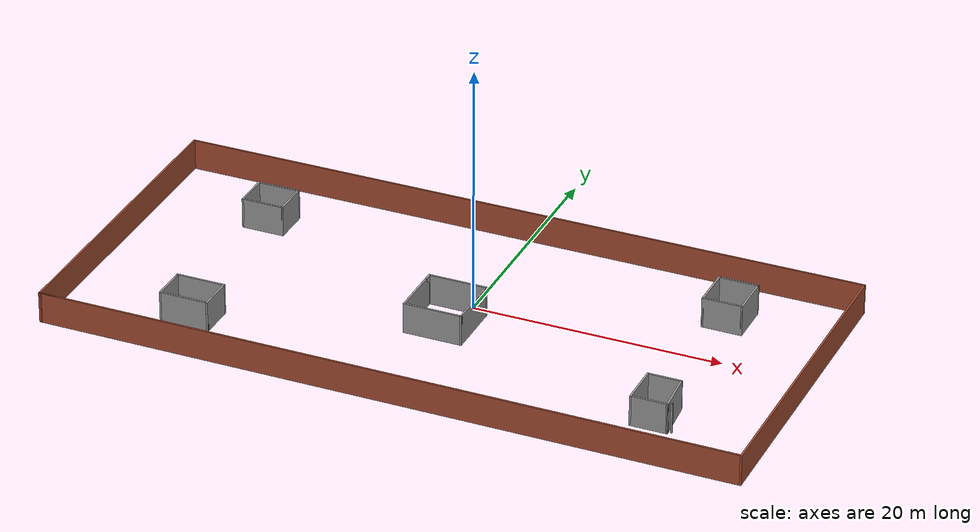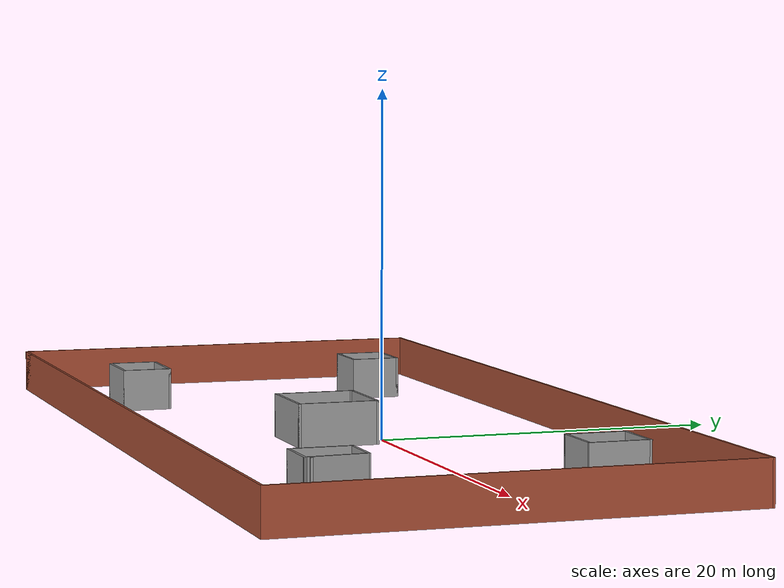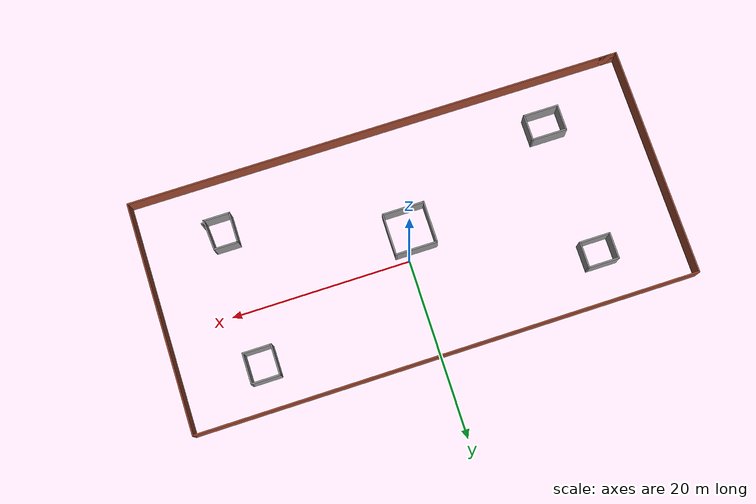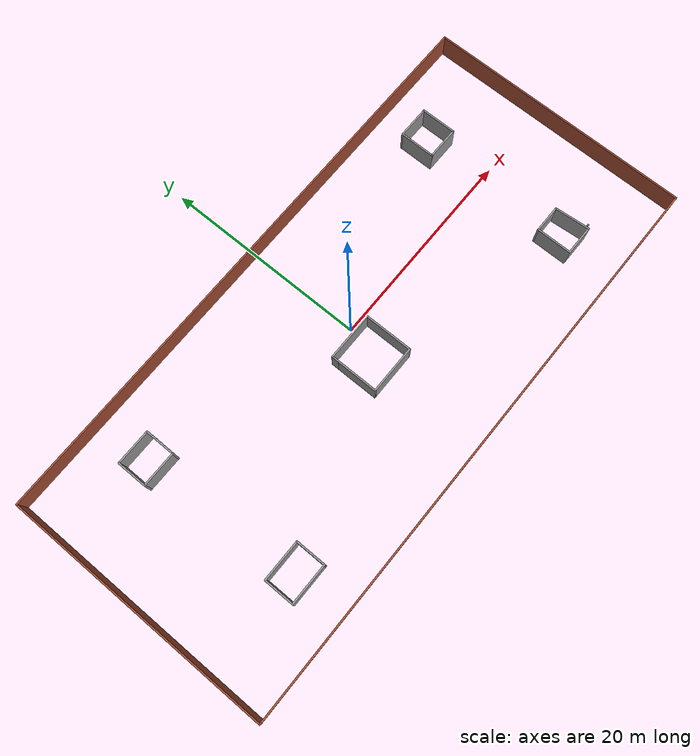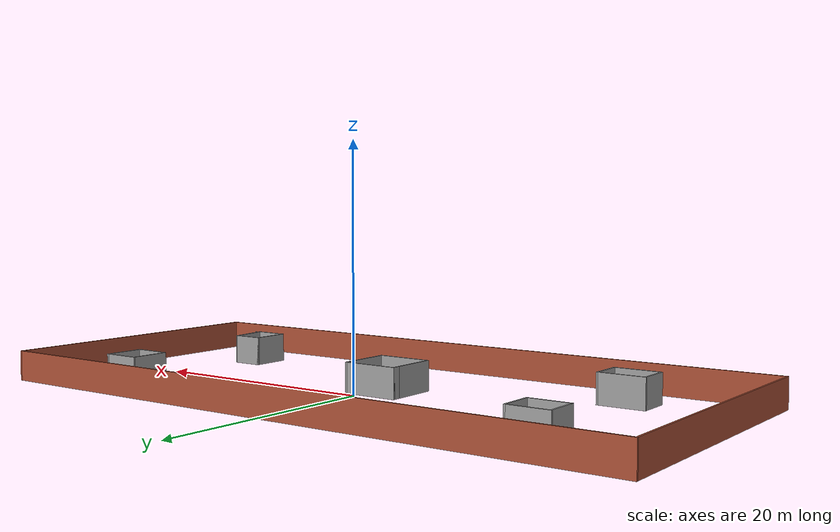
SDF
<?xml version='1.0'?>
<sdf version='1.6'>
  <model name='world'>
    <pose frame=''>-0.851102 -1.94617 0 0 -0 0</pose>
    <link name='Wall_1'>
      <collision name='Wall_1_Collision'>
        <geometry>
          <box>
            <size>55.75 0.15 2.5</size>
          </box>
        </geometry>
        <pose frame=''>0 0 1.25 0 -0 0</pose>
      </collision>
      <visual name='Wall_1_Visual'>
        <pose frame=''>0 0 1.25 0 -0 0</pose>
        <geometry>
          <box>
            <size>55.75 0.15 2.5</size>
          </box>
        </geometry>
        <material>
          <script>
            <uri>file://media/materials/scripts/gazebo.material</uri>
            <name>Gazebo/Bricks</name>
          </script>
          <ambient>1 1 1 1</ambient>
        </material>
        <meta>
          <layer>0</layer>
        </meta>
      </visual>
      <pose frame=''>0.125001 -12.925 0 0 -0 0</pose>
    </link>
    <link name='Wall_2'>
      <collision name='Wall_2_Collision'>
        <geometry>
          <box>
            <size>26 0.15 2.5</size>
          </box>
        </geometry>
        <pose frame=''>0 0 1.25 0 -0 0</pose>
      </collision>
      <visual name='Wall_2_Visual'>
        <pose frame=''>0 0 1.25 0 -0 0</pose>
        <geometry>
          <box>
            <size>26 0.15 2.5</size>
          </box>
        </geometry>
        <material>
          <script>
            <uri>file://media/materials/scripts/gazebo.material</uri>
            <name>Gazebo/Bricks</name>
          </script>
          <ambient>1 1 1 1</ambient>
        </material>
        <meta>
          <layer>0</layer>
        </meta>
      </visual>
      <pose frame=''>27.925 -0 0 0 -0 1.5708</pose>
    </link>
    <link name='Wall_3'>
      <collision name='Wall_3_Collision'>
        <geometry>
          <box>
            <size>56 0.15 2.5</size>
          </box>
        </geometry>
        <pose frame=''>0 0 1.25 0 -0 0</pose>
      </collision>
      <visual name='Wall_3_Visual'>
        <pose frame=''>0 0 1.25 0 -0 0</pose>
        <geometry>
          <box>
            <size>56 0.15 2.5</size>
          </box>
        </geometry>
        <material>
          <script>
            <uri>file://media/materials/scripts/gazebo.material</uri>
            <name>Gazebo/Bricks</name>
          </script>
          <ambient>1 1 1 1</ambient>
        </material>
        <meta>
          <layer>0</layer>
        </meta>
      </visual>
      <pose frame=''>1e-06 12.925 0 0 -0 3.14159</pose>
    </link>
    <link name='Wall_34'>
      <collision name='Wall_34_Collision'>
        <geometry>
          <box>
            <size>4.5 0.15 2.5</size>
          </box>
        </geometry>
        <pose frame=''>0 0 1.25 0 -0 0</pose>
      </collision>
      <visual name='Wall_34_Visual'>
        <pose frame=''>0 0 1.25 0 -0 0</pose>
        <geometry>
          <box>
            <size>4.5 0.15 2.5</size>
          </box>
        </geometry>
        <material>
          <script>
            <uri>file://media/materials/scripts/gazebo.material</uri>
            <name>Gazebo/Grey</name>
          </script>
          <ambient>1 1 1 1</ambient>
        </material>
        <meta>
          <layer>0</layer>
        </meta>
      </visual>
      <pose frame=''>-2.44147 -1.20102 0 0 -0 -1.5708</pose>
    </link>
    <link name='Wall_35'>
      <collision name='Wall_35_Collision'>
        <geometry>
          <box>
            <size>4.75 0.15 2.5</size>
          </box>
        </geometry>
        <pose frame=''>0 0 1.25 0 -0 0</pose>
      </collision>
      <visual name='Wall_35_Visual'>
        <pose frame=''>0 0 1.25 0 -0 0</pose>
        <geometry>
          <box>
            <size>4.75 0.15 2.5</size>
          </box>
        </geometry>
        <material>
          <script>
            <uri>file://media/materials/scripts/gazebo.material</uri>
            <name>Gazebo/Grey</name>
          </script>
          <ambient>1 1 1 1</ambient>
        </material>
        <meta>
          <layer>0</layer>
        </meta>
      </visual>
      <pose frame=''>-0.141466 -3.37602 0 0 -0 0</pose>
    </link>
    <link name='Wall_36'>
      <collision name='Wall_36_Collision'>
        <geometry>
          <box>
            <size>4.75 0.15 2.5</size>
          </box>
        </geometry>
        <pose frame=''>0 0 1.25 0 -0 0</pose>
      </collision>
      <visual name='Wall_36_Visual'>
        <pose frame=''>0 0 1.25 0 -0 0</pose>
        <geometry>
          <box>
            <size>4.75 0.15 2.5</size>
          </box>
        </geometry>
        <material>
          <script>
            <uri>file://media/materials/scripts/gazebo.material</uri>
            <name>Gazebo/Grey</name>
          </script>
          <ambient>1 1 1 1</ambient>
        </material>
        <meta>
          <layer>0</layer>
        </meta>
      </visual>
      <pose frame=''>2.15853 -1.07602 0 0 -0 1.5708</pose>
    </link>
    <link name='Wall_37'>
      <collision name='Wall_37_Collision'>
        <geometry>
          <box>
            <size>4.75 0.15 2.5</size>
          </box>
        </geometry>
        <pose frame=''>0 0 1.25 0 -0 0</pose>
      </collision>
      <visual name='Wall_37_Visual'>
        <pose frame=''>0 0 1.25 0 -0 0</pose>
        <geometry>
          <box>
            <size>4.75 0.15 2.5</size>
          </box>
        </geometry>
        <material>
          <script>
            <uri>file://media/materials/scripts/gazebo.material</uri>
            <name>Gazebo/Grey</name>
          </script>
          <ambient>1 1 1 1</ambient>
        </material>
        <meta>
          <layer>0</layer>
        </meta>
      </visual>
      <pose frame=''>-0.141466 1.22398 0 0 -0 3.14159</pose>
    </link>
    <link name='Wall_38'>
      <collision name='Wall_38_Collision'>
        <geometry>
          <box>
            <size>0.75 0.15 2.5</size>
          </box>
        </geometry>
        <pose frame=''>0 0 1.25 0 -0 0</pose>
      </collision>
      <visual name='Wall_38_Visual'>
        <pose frame=''>0 0 1.25 0 -0 0</pose>
        <geometry>
          <box>
            <size>0.75 0.15 2.5</size>
          </box>
        </geometry>
        <material>
          <script>
            <uri>file://media/materials/scripts/gazebo.material</uri>
            <name>Gazebo/Grey</name>
          </script>
          <ambient>1 1 1 1</ambient>
        </material>
        <meta>
          <layer>0</layer>
        </meta>
      </visual>
      <pose frame=''>-2.44147 0.923978 0 0 -0 -1.5708</pose>
    </link>
    <link name='Wall_4'>
      <collision name='Wall_4_Collision'>
        <geometry>
          <box>
            <size>26 0.15 2.5</size>
          </box>
        </geometry>
        <pose frame=''>0 0 1.25 0 -0 0</pose>
      </collision>
      <visual name='Wall_4_Visual'>
        <pose frame=''>0 0 1.25 0 -0 0</pose>
        <geometry>
          <box>
            <size>26 0.15 2.5</size>
          </box>
        </geometry>
        <material>
          <script>
            <uri>file://media/materials/scripts/gazebo.material</uri>
            <name>Gazebo/Bricks</name>
          </script>
          <ambient>1 1 1 1</ambient>
        </material>
        <meta>
          <layer>0</layer>
        </meta>
      </visual>
      <pose frame=''>-27.925 -0 0 0 -0 -1.5708</pose>
    </link>
    <link name='Wall_40'>
      <collision name='Wall_40_Collision'>
        <geometry>
          <box>
            <size>3 0.15 2.5</size>
          </box>
        </geometry>
        <pose frame=''>0 0 1.25 0 -0 0</pose>
      </collision>
      <visual name='Wall_40_Visual'>
        <pose frame=''>0 0 1.25 0 -0 0</pose>
        <geometry>
          <box>
            <size>3 0.15 2.5</size>
          </box>
        </geometry>
        <material>
          <script>
            <uri>file://media/materials/scripts/gazebo.material</uri>
            <name>Gazebo/Grey</name>
          </script>
          <ambient>1 1 1 1</ambient>
        </material>
        <meta>
          <layer>0</layer>
        </meta>
      </visual>
      <pose frame=''>-20.3066 7.45804 0 0 -0 -1.5708</pose>
    </link>
    <link name='Wall_41'>
      <collision name='Wall_41_Collision'>
        <geometry>
          <box>
            <size>3.5 0.15 2.5</size>
          </box>
        </geometry>
        <pose frame=''>0 0 1.25 0 -0 0</pose>
      </collision>
      <visual name='Wall_41_Visual'>
        <pose frame=''>0 0 1.25 0 -0 0</pose>
        <geometry>
          <box>
            <size>3.5 0.15 2.5</size>
          </box>
        </geometry>
        <material>
          <script>
            <uri>file://media/materials/scripts/gazebo.material</uri>
            <name>Gazebo/Grey</name>
          </script>
          <ambient>1 1 1 1</ambient>
        </material>
        <meta>
          <layer>0</layer>
        </meta>
      </visual>
      <pose frame=''>-18.6316 6.03304 0 0 -0 0</pose>
    </link>
    <link name='Wall_45'>
      <collision name='Wall_45_Collision'>
        <geometry>
          <box>
            <size>3 0.15 2.5</size>
          </box>
        </geometry>
        <pose frame=''>0 0 1.25 0 -0 0</pose>
      </collision>
      <visual name='Wall_45_Visual'>
        <pose frame=''>0 0 1.25 0 -0 0</pose>
        <geometry>
          <box>
            <size>3 0.15 2.5</size>
          </box>
        </geometry>
        <material>
          <script>
            <uri>file://media/materials/scripts/gazebo.material</uri>
            <name>Gazebo/Grey</name>
          </script>
          <ambient>1 1 1 1</ambient>
        </material>
        <meta>
          <layer>0</layer>
        </meta>
      </visual>
      <pose frame=''>-16.9566 7.45804 0 0 -0 1.5708</pose>
    </link>
    <link name='Wall_46'>
      <collision name='Wall_46_Collision'>
        <geometry>
          <box>
            <size>3.5 0.15 2.5</size>
          </box>
        </geometry>
        <pose frame=''>0 0 1.25 0 -0 0</pose>
      </collision>
      <visual name='Wall_46_Visual'>
        <pose frame=''>0 0 1.25 0 -0 0</pose>
        <geometry>
          <box>
            <size>3.5 0.15 2.5</size>
          </box>
        </geometry>
        <material>
          <script>
            <uri>file://media/materials/scripts/gazebo.material</uri>
            <name>Gazebo/Grey</name>
          </script>
          <ambient>1 1 1 1</ambient>
        </material>
        <meta>
          <layer>0</layer>
        </meta>
      </visual>
      <pose frame=''>-18.6316 8.88304 0 0 -0 3.14159</pose>
    </link>
    <link name='Wall_48'>
      <collision name='Wall_48_Collision'>
        <geometry>
          <box>
            <size>3 0.15 2.5</size>
          </box>
        </geometry>
        <pose frame=''>0 0 1.25 0 -0 0</pose>
      </collision>
      <visual name='Wall_48_Visual'>
        <pose frame=''>0 0 1.25 0 -0 0</pose>
        <geometry>
          <box>
            <size>3 0.15 2.5</size>
          </box>
        </geometry>
        <material>
          <script>
            <uri>file://media/materials/scripts/gazebo.material</uri>
            <name>Gazebo/Grey</name>
          </script>
          <ambient>1 1 1 1</ambient>
        </material>
        <meta>
          <layer>0</layer>
        </meta>
      </visual>
      <pose frame=''>-19.7484 -7.75528 0 0 -0 -1.5708</pose>
    </link>
    <link name='Wall_49'>
      <collision name='Wall_49_Collision'>
        <geometry>
          <box>
            <size>4 0.15 2.5</size>
          </box>
        </geometry>
        <pose frame=''>0 0 1.25 0 -0 0</pose>
      </collision>
      <visual name='Wall_49_Visual'>
        <pose frame=''>0 0 1.25 0 -0 0</pose>
        <geometry>
          <box>
            <size>4 0.15 2.5</size>
          </box>
        </geometry>
        <material>
          <script>
            <uri>file://media/materials/scripts/gazebo.material</uri>
            <name>Gazebo/Grey</name>
          </script>
          <ambient>1 1 1 1</ambient>
        </material>
        <meta>
          <layer>0</layer>
        </meta>
      </visual>
      <pose frame=''>-17.8234 -9.18028 0 0 -0 0</pose>
    </link>
    <link name='Wall_5'>
      <collision name='Wall_5_Collision'>
        <geometry>
          <box>
            <size>2 0.15 2.5</size>
          </box>
        </geometry>
        <pose frame=''>0 0 1.25 0 -0 0</pose>
      </collision>
      <visual name='Wall_5_Visual'>
        <pose frame=''>0 0 1.25 0 -0 0</pose>
        <geometry>
          <box>
            <size>2 0.15 2.5</size>
          </box>
        </geometry>
        <material>
          <script>
            <uri>file://media/materials/scripts/gazebo.material</uri>
            <name>Gazebo/Bricks</name>
          </script>
          <ambient>1 1 1 1</ambient>
        </material>
        <meta>
          <layer>0</layer>
        </meta>
      </visual>
      <pose frame=''>-27 -12.925 0 0 -0 0</pose>
    </link>
    <link name='Wall_53'>
      <collision name='Wall_53_Collision'>
        <geometry>
          <box>
            <size>3 0.15 2.5</size>
          </box>
        </geometry>
        <pose frame=''>0 0 1.25 0 -0 0</pose>
      </collision>
      <visual name='Wall_53_Visual'>
        <pose frame=''>0 0 1.25 0 -0 0</pose>
        <geometry>
          <box>
            <size>3 0.15 2.5</size>
          </box>
        </geometry>
        <material>
          <script>
            <uri>file://media/materials/scripts/gazebo.material</uri>
            <name>Gazebo/Grey</name>
          </script>
          <ambient>1 1 1 1</ambient>
        </material>
        <meta>
          <layer>0</layer>
        </meta>
      </visual>
      <pose frame=''>-15.8984 -7.75528 0 0 -0 1.5708</pose>
    </link>
    <link name='Wall_54'>
      <collision name='Wall_54_Collision'>
        <geometry>
          <box>
            <size>4 0.15 2.5</size>
          </box>
        </geometry>
        <pose frame=''>0 0 1.25 0 -0 0</pose>
      </collision>
      <visual name='Wall_54_Visual'>
        <pose frame=''>0 0 1.25 0 -0 0</pose>
        <geometry>
          <box>
            <size>4 0.15 2.5</size>
          </box>
        </geometry>
        <material>
          <script>
            <uri>file://media/materials/scripts/gazebo.material</uri>
            <name>Gazebo/Grey</name>
          </script>
          <ambient>1 1 1 1</ambient>
        </material>
        <meta>
          <layer>0</layer>
        </meta>
      </visual>
      <pose frame=''>-17.8234 -6.33028 0 0 -0 3.14159</pose>
    </link>
    <link name='Wall_56'>
      <collision name='Wall_56_Collision'>
        <geometry>
          <box>
            <size>3.5 0.15 2.5</size>
          </box>
        </geometry>
        <pose frame=''>0 0 1.25 0 -0 0</pose>
      </collision>
      <visual name='Wall_56_Visual'>
        <pose frame=''>0 0 1.25 0 -0 0</pose>
        <geometry>
          <box>
            <size>3.5 0.15 2.5</size>
          </box>
        </geometry>
        <material>
          <script>
            <uri>file://media/materials/scripts/gazebo.material</uri>
            <name>Gazebo/Grey</name>
          </script>
          <ambient>1 1 1 1</ambient>
        </material>
        <meta>
          <layer>0</layer>
        </meta>
      </visual>
      <pose frame=''>17.5638 7.99895 0 0 -0 -1.5708</pose>
    </link>
    <link name='Wall_57'>
      <collision name='Wall_57_Collision'>
        <geometry>
          <box>
            <size>3.25 0.15 2.5</size>
          </box>
        </geometry>
        <pose frame=''>0 0 1.25 0 -0 0</pose>
      </collision>
      <visual name='Wall_57_Visual'>
        <pose frame=''>0 0 1.25 0 -0 0</pose>
        <geometry>
          <box>
            <size>3.25 0.15 2.5</size>
          </box>
        </geometry>
        <material>
          <script>
            <uri>file://media/materials/scripts/gazebo.material</uri>
            <name>Gazebo/Grey</name>
          </script>
          <ambient>1 1 1 1</ambient>
        </material>
        <meta>
          <layer>0</layer>
        </meta>
      </visual>
      <pose frame=''>19.1138 6.32395 0 0 -0 0</pose>
    </link>
    <link name='Wall_58'>
      <collision name='Wall_58_Collision'>
        <geometry>
          <box>
            <size>3.5 0.15 2.5</size>
          </box>
        </geometry>
        <pose frame=''>0 0 1.25 0 -0 0</pose>
      </collision>
      <visual name='Wall_58_Visual'>
        <pose frame=''>0 0 1.25 0 -0 0</pose>
        <geometry>
          <box>
            <size>3.5 0.15 2.5</size>
          </box>
        </geometry>
        <material>
          <script>
            <uri>file://media/materials/scripts/gazebo.material</uri>
            <name>Gazebo/Grey</name>
          </script>
          <ambient>1 1 1 1</ambient>
        </material>
        <meta>
          <layer>0</layer>
        </meta>
      </visual>
      <pose frame=''>20.6638 7.99895 0 0 -0 1.5708</pose>
    </link>
    <link name='Wall_59'>
      <collision name='Wall_59_Collision'>
        <geometry>
          <box>
            <size>3.25 0.15 2.5</size>
          </box>
        </geometry>
        <pose frame=''>0 0 1.25 0 -0 0</pose>
      </collision>
      <visual name='Wall_59_Visual'>
        <pose frame=''>0 0 1.25 0 -0 0</pose>
        <geometry>
          <box>
            <size>3.25 0.15 2.5</size>
          </box>
        </geometry>
        <material>
          <script>
            <uri>file://media/materials/scripts/gazebo.material</uri>
            <name>Gazebo/Grey</name>
          </script>
          <ambient>1 1 1 1</ambient>
        </material>
        <meta>
          <layer>0</layer>
        </meta>
      </visual>
      <pose frame=''>19.1138 9.67395 0 0 -0 3.14159</pose>
    </link>
    <link name='Wall_61'>
      <collision name='Wall_61_Collision'>
        <geometry>
          <box>
            <size>3.5 0.15 2.5</size>
          </box>
        </geometry>
        <pose frame=''>0 0 1.25 0 -0 0</pose>
      </collision>
      <visual name='Wall_61_Visual'>
        <pose frame=''>0 0 1.25 0 -0 0</pose>
        <geometry>
          <box>
            <size>3.5 0.15 2.5</size>
          </box>
        </geometry>
        <material>
          <script>
            <uri>file://media/materials/scripts/gazebo.material</uri>
            <name>Gazebo/Grey</name>
          </script>
          <ambient>1 1 1 1</ambient>
        </material>
        <meta>
          <layer>0</layer>
        </meta>
      </visual>
      <pose frame=''>17.7964 -6.98175 0 0 -0 -1.5708</pose>
    </link>
    <link name='Wall_62'>
      <collision name='Wall_62_Collision'>
        <geometry>
          <box>
            <size>3 0.15 2.5</size>
          </box>
        </geometry>
        <pose frame=''>0 0 1.25 0 -0 0</pose>
      </collision>
      <visual name='Wall_62_Visual'>
        <pose frame=''>0 0 1.25 0 -0 0</pose>
        <geometry>
          <box>
            <size>3 0.15 2.5</size>
          </box>
        </geometry>
        <material>
          <script>
            <uri>file://media/materials/scripts/gazebo.material</uri>
            <name>Gazebo/Grey</name>
          </script>
          <ambient>1 1 1 1</ambient>
        </material>
        <meta>
          <layer>0</layer>
        </meta>
      </visual>
      <pose frame=''>19.2214 -8.65675 0 0 -0 0</pose>
    </link>
    <link name='Wall_68'>
      <collision name='Wall_68_Collision'>
        <geometry>
          <box>
            <size>0.15 0.15 2.5</size>
          </box>
        </geometry>
        <pose frame=''>0 0 1.25 0 -0 0</pose>
      </collision>
      <visual name='Wall_68_Visual'>
        <pose frame=''>0 0 1.25 0 -0 0</pose>
        <geometry>
          <box>
            <size>0.15 0.15 2.5</size>
          </box>
        </geometry>
        <material>
          <script>
            <uri>file://media/materials/scripts/gazebo.material</uri>
            <name>Gazebo/Grey</name>
          </script>
          <ambient>1 1 1 1</ambient>
        </material>
        <meta>
          <layer>0</layer>
        </meta>
      </visual>
      <pose frame=''>20.8964 -8.40675 0 0 -0 0</pose>
    </link>
    <link name='Wall_72'>
      <collision name='Wall_72_Collision'>
        <geometry>
          <box>
            <size>2.75 0.15 2.5</size>
          </box>
        </geometry>
        <pose frame=''>0 0 1.25 0 -0 0</pose>
      </collision>
      <visual name='Wall_72_Visual'>
        <pose frame=''>0 0 1.25 0 -0 0</pose>
        <geometry>
          <box>
            <size>2.75 0.15 2.5</size>
          </box>
        </geometry>
        <material>
          <script>
            <uri>file://media/materials/scripts/gazebo.material</uri>
            <name>Gazebo/Grey</name>
          </script>
          <ambient>1 1 1 1</ambient>
        </material>
        <meta>
          <layer>0</layer>
        </meta>
      </visual>
      <pose frame=''>19.0964 -5.30675 0 0 -0 0</pose>
    </link>
    <link name='Wall_73'>
      <collision name='Wall_73_Collision'>
        <geometry>
          <box>
            <size>3.50931 0.15 2.5</size>
          </box>
        </geometry>
        <pose frame=''>0 0 1.25 0 -0 0</pose>
      </collision>
      <visual name='Wall_73_Visual'>
        <pose frame=''>0 0 1.25 0 -0 0</pose>
        <geometry>
          <box>
            <size>3.50931 0.15 2.5</size>
          </box>
        </geometry>
        <material>
          <script>
            <uri>file://media/materials/scripts/gazebo.material</uri>
            <name>Gazebo/Grey</name>
          </script>
          <ambient>1 1 1 1</ambient>
        </material>
        <meta>
          <layer>0</layer>
        </meta>
      </visual>
      <pose frame=''>20.5214 -6.98175 0 0 -0 -1.49631</pose>
    </link>
    <static>1</static>
  </model>
</sdf>
